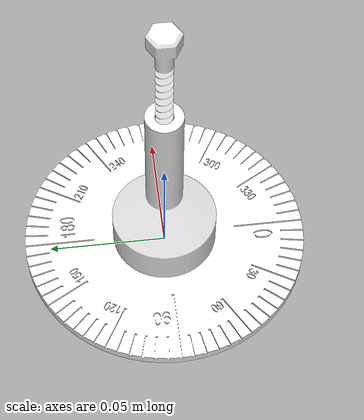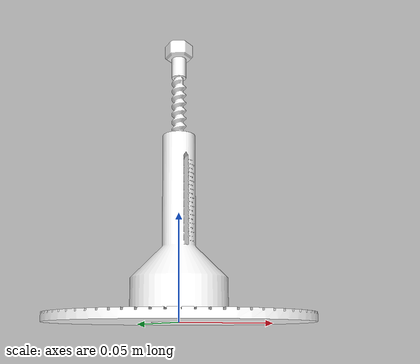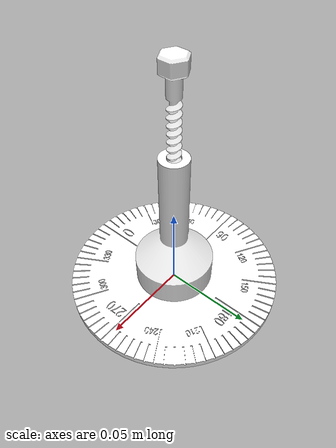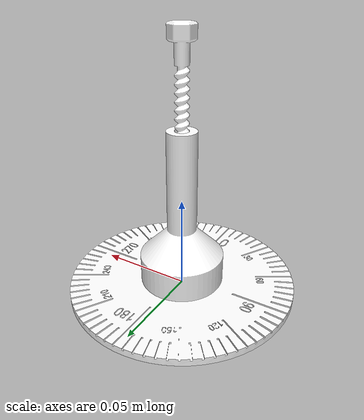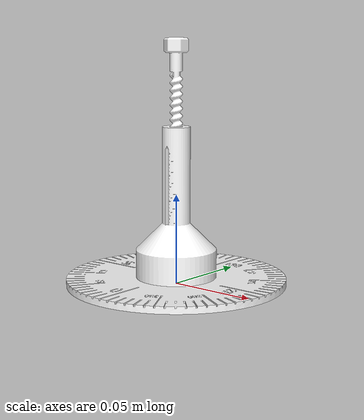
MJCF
<mujoco model="C1_Thread">

  <asset>
    <mesh name="angle_plate" file="angle_plate.stl" scale="1 1 1"/>
    <mesh name="screwing_base" file="screwing_base.stl" scale="1 1 1"/>
    <mesh name="N10_screw_head" file="N10_screw_head.stl" scale="1 1 1"/>
    <mesh name="N10_screw" file="N10_screw.stl" scale="1 1 1"/>

    <material name="object_material" rgba="1 1 1 1" shininess="0.3"/>
  </asset>

  <default>
    <default class="visual">
      <geom contype="0" conaffinity="0" group="2"/>
    </default>
    <default class="collision">
      <geom group="3"/>
    </default>
  </default>

  <worldbody>

    <body name="screwing_base" pos="0 0 0">
      <geom name="angle_plate" type="mesh" mesh="angle_plate" material="object_material" class="visual"/>
      <geom type="cylinder" size="0.06075 0.002" pos="0 0 0.002" density="248" class="collision"/>
      <geom name="screwing_base" type="mesh" mesh="screwing_base" pos="0 0 0.004" material="object_material" class="visual"/>
      <geom type="cylinder" size="0.00775 0.041785" pos="0 0 0.045785" density="248" class="collision"/>
      <geom type="cylinder" size="0.02225 0.007785" pos="0 0 0.011785" density="248" class="collision"/>
    </body>

    <body name="bolt_body" pos="0 0 0.08757">
      <joint name="bolt_slide" type="slide" pos="0 0 0.040" axis="0 0 -1" range="0 0.040"/>
      <joint name="bolt_hinge" type="hinge" axis="0 0 1" range="-62.83 0" damping="0.00005"/>
      <geom name="N10_screw" type="mesh" mesh="N10_screw" pos="0 0 0.040" material="object_material" class="visual"/>
      <geom name="N10_screw_head" type="mesh" mesh="N10_screw_head" pos="0 0 0.040" mass="0.05" class="collision"/>
    </body>

  </worldbody>

  <actuator>
    <motor name="slide_bolt_motor" joint="bolt_slide" ctrllimited="true" ctrlrange="-50 50"/>
  </actuator>

  <sensor>
    <jointpos name="bolt_hinge_angle" joint="bolt_hinge"/>
    <jointpos name="bolt_slide_position" joint="bolt_slide"/>
    <jointvel name="bolt_slide_velocity" joint="bolt_slide"/>
  </sensor>

  <option gravity="0 0 -9.81"/>

</mujoco>
